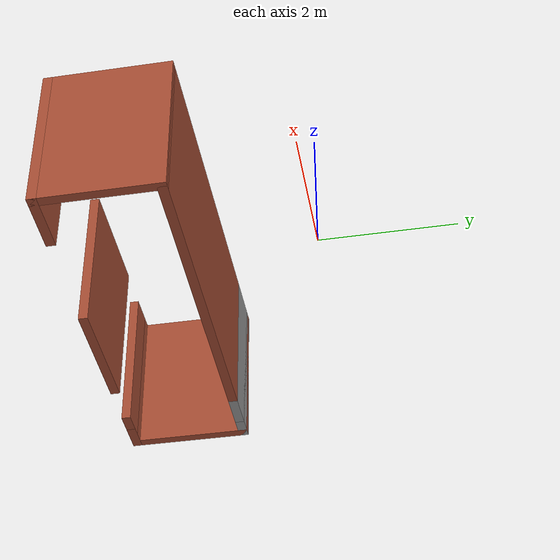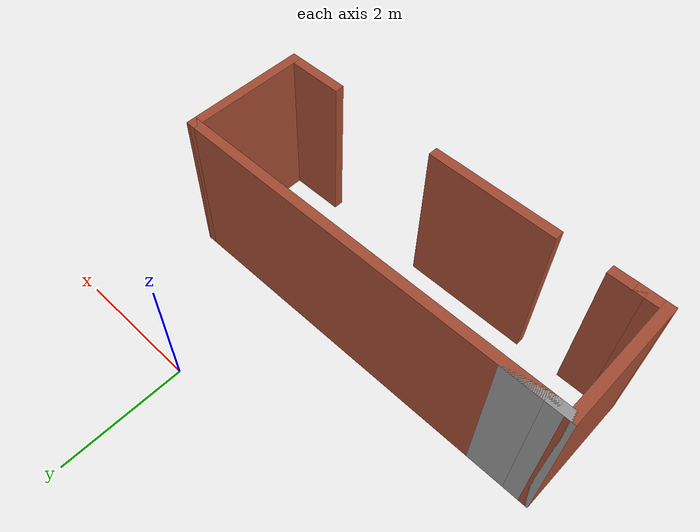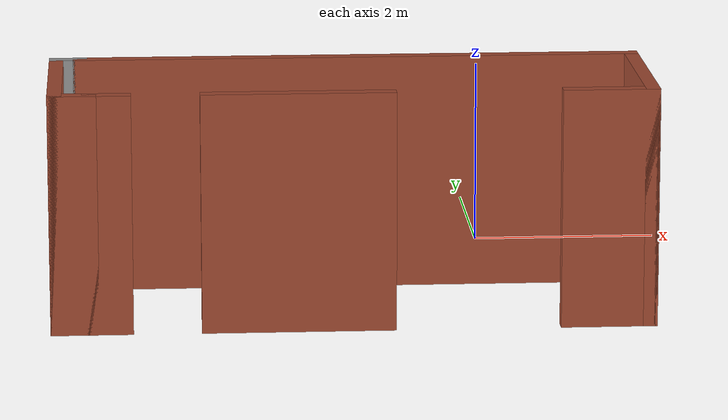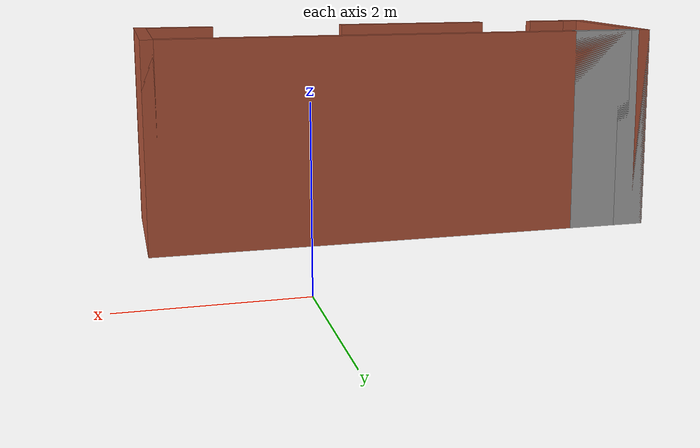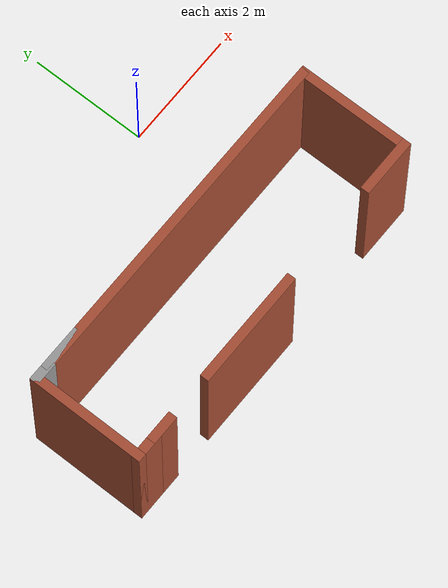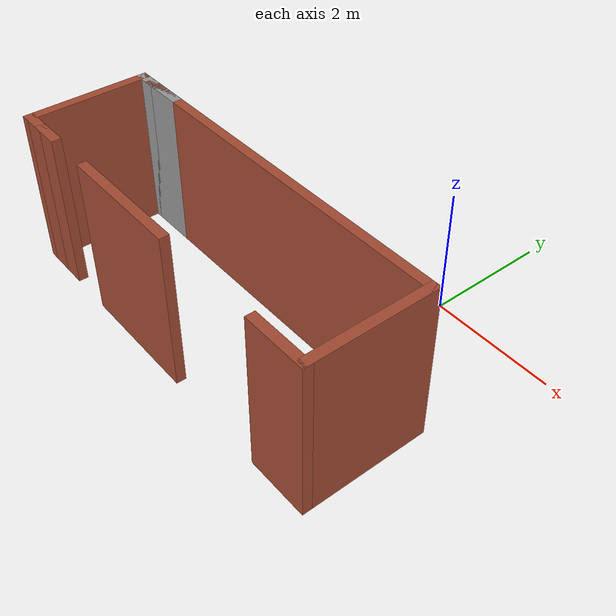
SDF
<?xml version='1.0'?>
<sdf version='1.6'>
  <model name='final'>
    <pose frame=''>-1.57 -2.875 0 0 -0 0</pose>
    <link name='Wall_10'>
      <collision name='Wall_10_Collision'>
        <geometry>
          <box>
            <size>0.5 0.15 2.5</size>
          </box>
        </geometry>
        <pose frame=''>0 0 1.25 0 -0 0</pose>
      </collision>
      <visual name='Wall_10_Visual'>
        <pose frame=''>0 0 1.25 0 -0 0</pose>
        <geometry>
          <box>
            <size>0.5 0.15 2.5</size>
          </box>
        </geometry>
        <material>
          <script>
            <uri>file://media/materials/scripts/gazebo.material</uri>
            <name>Gazebo/Bricks</name>
          </script>
          <ambient>1 1 1 1</ambient>
        </material>
        <meta>
          <layer>0</layer>
        </meta>
      </visual>
      <pose frame=''>-2.875 -0.925 0 0 -0 3.14159</pose>
    </link>
    <link name='Wall_11'>
      <collision name='Wall_11_Collision'>
        <geometry>
          <box>
            <size>2 0.15 2.5</size>
          </box>
        </geometry>
        <pose frame=''>0 0 1.25 0 -0 0</pose>
      </collision>
      <visual name='Wall_11_Visual'>
        <pose frame=''>0 0 1.25 0 -0 0</pose>
        <geometry>
          <box>
            <size>2 0.15 2.5</size>
          </box>
        </geometry>
        <material>
          <script>
            <uri>file://media/materials/scripts/gazebo.material</uri>
            <name>Gazebo/Bricks</name>
          </script>
          <ambient>1 1 1 1</ambient>
        </material>
        <meta>
          <layer>0</layer>
        </meta>
      </visual>
      <pose frame=''>-3.05 -0 0 0 -0 1.5708</pose>
    </link>
    <link name='Wall_12'>
      <collision name='Wall_12_Collision'>
        <geometry>
          <box>
            <size>0.4 0.15 2.5</size>
          </box>
        </geometry>
        <pose frame=''>0 0 1.25 0 -0 0</pose>
      </collision>
      <visual name='Wall_12_Visual'>
        <pose frame=''>0 0 1.25 0 -0 0</pose>
        <geometry>
          <box>
            <size>0.4 0.15 2.5</size>
          </box>
        </geometry>
        <material>
          <script>
            <uri>file://media/materials/scripts/gazebo.material</uri>
            <name>Gazebo/Grey</name>
          </script>
          <ambient>1 1 1 1</ambient>
        </material>
        <meta>
          <layer>0</layer>
        </meta>
      </visual>
      <pose frame=''>-2.925 0.925 0 0 -0 0</pose>
    </link>
    <link name='Wall_13'>
      <collision name='Wall_13_Collision'>
        <geometry>
          <box>
            <size>0.75 0.15 2.5</size>
          </box>
        </geometry>
        <pose frame=''>0 0 1.25 0 -0 0</pose>
      </collision>
      <visual name='Wall_13_Visual'>
        <pose frame=''>0 0 1.25 0 -0 0</pose>
        <geometry>
          <box>
            <size>0.75 0.15 2.5</size>
          </box>
        </geometry>
        <material>
          <script>
            <uri>file://media/materials/scripts/gazebo.material</uri>
            <name>Gazebo/Grey</name>
          </script>
          <ambient>1 1 1 1</ambient>
        </material>
        <meta>
          <layer>0</layer>
        </meta>
      </visual>
      <pose frame=''>-2.5 0.925 0 0 -0 0</pose>
    </link>
    <link name='Wall_3'>
      <collision name='Wall_3_Collision'>
        <geometry>
          <box>
            <size>6 0.15 2.5</size>
          </box>
        </geometry>
        <pose frame=''>0 0 1.25 0 -0 0</pose>
      </collision>
      <visual name='Wall_3_Visual'>
        <pose frame=''>0 0 1.25 0 -0 0</pose>
        <geometry>
          <box>
            <size>6 0.15 2.5</size>
          </box>
        </geometry>
        <material>
          <script>
            <uri>file://media/materials/scripts/gazebo.material</uri>
            <name>Gazebo/Bricks</name>
          </script>
          <ambient>1 1 1 1</ambient>
        </material>
        <meta>
          <layer>0</layer>
        </meta>
      </visual>
      <pose frame=''>0.125 0.925 0 0 -0 0</pose>
    </link>
    <link name='Wall_4'>
      <collision name='Wall_4_Collision'>
        <geometry>
          <box>
            <size>2 0.15 2.5</size>
          </box>
        </geometry>
        <pose frame=''>0 0 1.25 0 -0 0</pose>
      </collision>
      <visual name='Wall_4_Visual'>
        <pose frame=''>0 0 1.25 0 -0 0</pose>
        <geometry>
          <box>
            <size>2 0.15 2.5</size>
          </box>
        </geometry>
        <material>
          <script>
            <uri>file://media/materials/scripts/gazebo.material</uri>
            <name>Gazebo/Bricks</name>
          </script>
          <ambient>1 1 1 1</ambient>
        </material>
        <meta>
          <layer>0</layer>
        </meta>
      </visual>
      <pose frame=''>3.05 -0 0 0 -0 -1.5708</pose>
    </link>
    <link name='Wall_5'>
      <collision name='Wall_5_Collision'>
        <geometry>
          <box>
            <size>1 0.15 2.5</size>
          </box>
        </geometry>
        <pose frame=''>0 0 1.25 0 -0 0</pose>
      </collision>
      <visual name='Wall_5_Visual'>
        <pose frame=''>0 0 1.25 0 -0 0</pose>
        <geometry>
          <box>
            <size>1 0.15 2.5</size>
          </box>
        </geometry>
        <material>
          <script>
            <uri>file://media/materials/scripts/gazebo.material</uri>
            <name>Gazebo/Bricks</name>
          </script>
          <ambient>1 1 1 1</ambient>
        </material>
        <meta>
          <layer>0</layer>
        </meta>
      </visual>
      <pose frame=''>2.625 -0.925 0 0 -0 3.14159</pose>
    </link>
    <link name='Wall_7'>
      <collision name='Wall_7_Collision'>
        <geometry>
          <box>
            <size>2 0.15 2.5</size>
          </box>
        </geometry>
        <pose frame=''>0 0 1.25 0 -0 0</pose>
      </collision>
      <visual name='Wall_7_Visual'>
        <pose frame=''>0 0 1.25 0 -0 0</pose>
        <geometry>
          <box>
            <size>2 0.15 2.5</size>
          </box>
        </geometry>
        <material>
          <script>
            <uri>file://media/materials/scripts/gazebo.material</uri>
            <name>Gazebo/Bricks</name>
          </script>
          <ambient>1 1 1 1</ambient>
        </material>
        <meta>
          <layer>0</layer>
        </meta>
      </visual>
      <pose frame=''>-0.575 -0.925 0 0 -0 3.14159</pose>
    </link>
    <link name='Wall_9'>
      <collision name='Wall_9_Collision'>
        <geometry>
          <box>
            <size>0.5 0.15 2.5</size>
          </box>
        </geometry>
        <pose frame=''>0 0 1.25 0 -0 0</pose>
      </collision>
      <visual name='Wall_9_Visual'>
        <pose frame=''>0 0 1.25 0 -0 0</pose>
        <geometry>
          <box>
            <size>0.5 0.15 2.5</size>
          </box>
        </geometry>
        <material>
          <script>
            <uri>file://media/materials/scripts/gazebo.material</uri>
            <name>Gazebo/Bricks</name>
          </script>
          <ambient>1 1 1 1</ambient>
        </material>
        <meta>
          <layer>0</layer>
        </meta>
      </visual>
      <pose frame=''>-2.525 -0.925 0 0 -0 3.14159</pose>
    </link>
    <static>1</static>
  </model>
</sdf>
